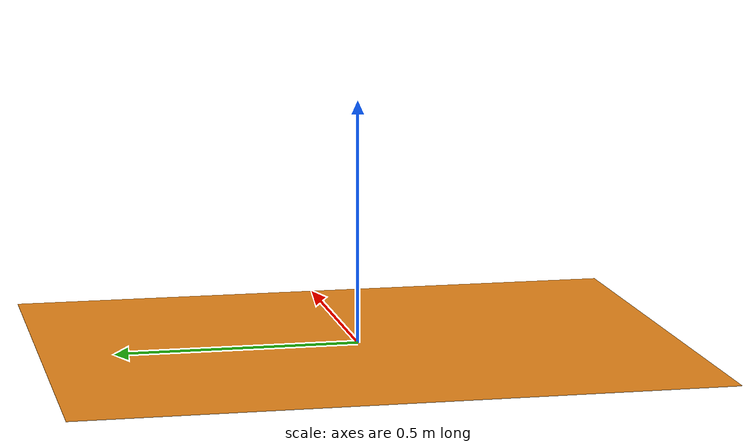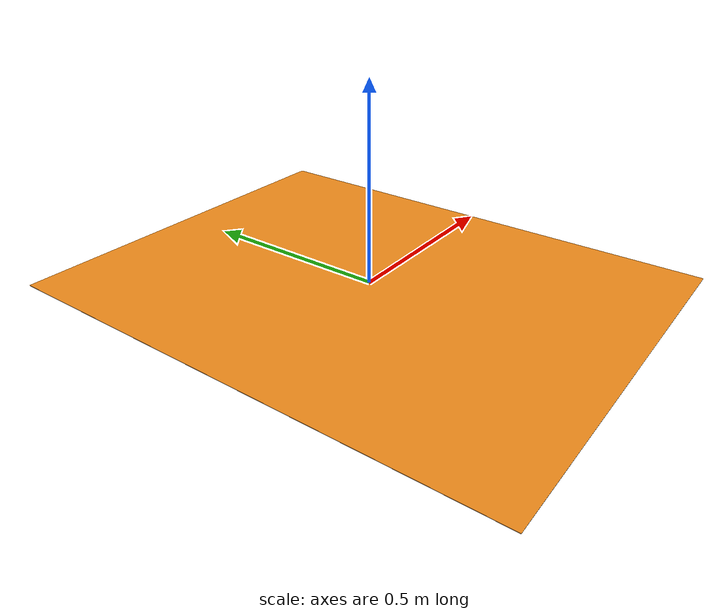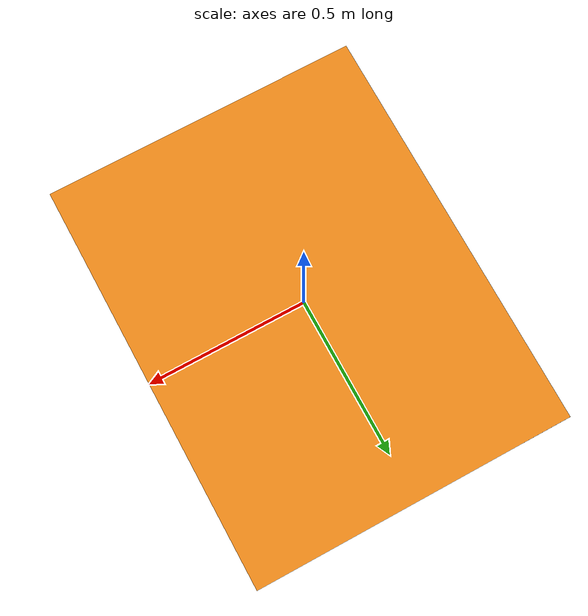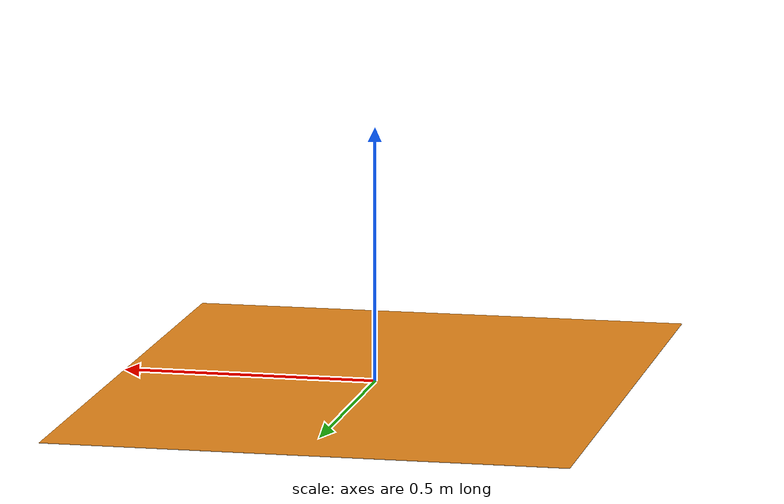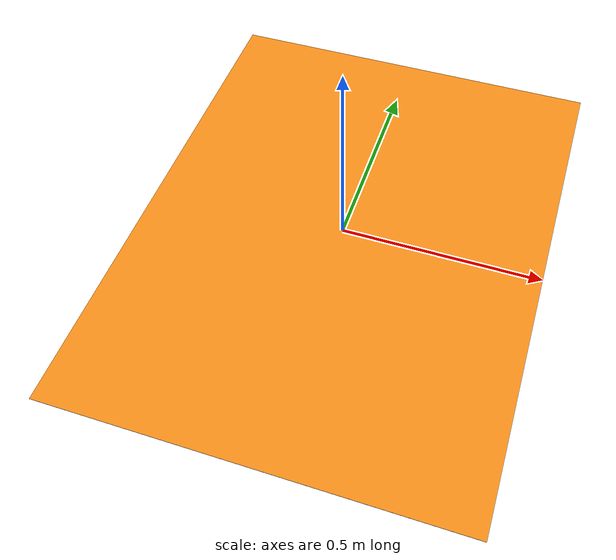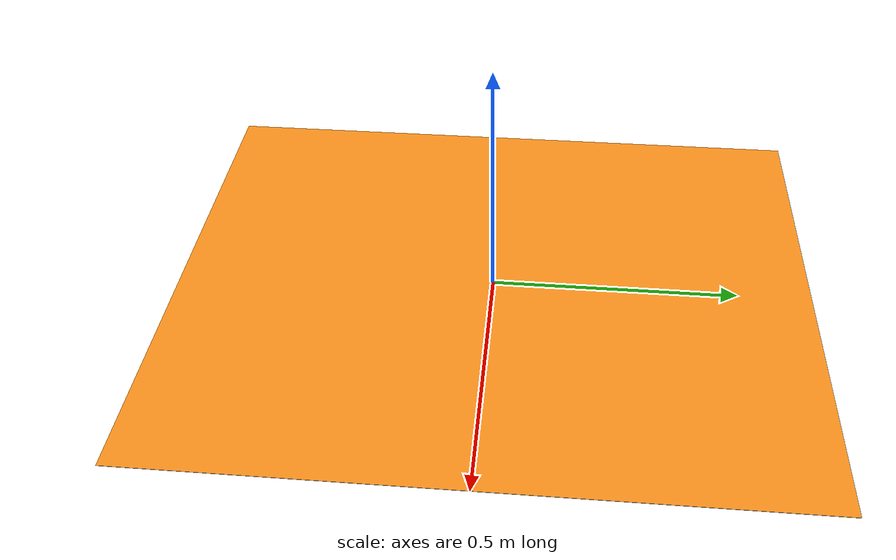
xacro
<?xml version="1.0"?>
<!-- Revolute-Revolute Manipulator -->
<robot name="table2" xmlns:xacro="http://www.ros.org/wiki/xacro">

  <!-- Constants for robot dimensions -->
  <xacro:property name="M_PI" value="3.1415926535897931"/>
  <xacro:property name="mass" value="0.9" /> <!-- arbitrary value for mass -->
  <xacro:property name="length" value="1" />
  <xacro:property name="width" value="1" />
  <xacro:property name="height" value="0.001" />

  <xacro:include filename="$(find object_description)/urdf/materials.xacro" />

  <link name="world"/>

  <joint name="world_table2" type="fixed">
    <parent link="world"/>
    <child link="table2"/>
  </joint>

  <!-- table2 -->
  <link name="table2">

    <visual>
      <origin xyz="0 0 ${height/2}" rpy="0 0 0"/>
      <geometry>
	<box size="${length} ${width+0.3} ${height}"/>
      </geometry>
      <material name="orange"/>
    </visual>

    <collision>
      <origin xyz="0 0 ${height/2}" rpy="0 0 0"/>
      <geometry>
	<box size="${length} ${width} ${height}"/>
      </geometry>
    </collision>

    <inertial>
      <origin xyz="0 0 ${height/2}" rpy="0 0 0"/>
      <mass value="${mass}"/>
      <inertia
	  ixx="${mass / 12.0 * (width*width + height*height)}" ixy="0.0" ixz="0.0"
	  iyy="${mass / 12.0 * (height*height + length*length)}" iyz="0.0"
	  izz="${mass / 12.0 * (length*length + width*width)}"/>
    </inertial>
  </link>

  <gazebo reference="table2">
    <material>Gazebo/Grey</material>
	<mu1>10000</mu1>
    <mu2>5000</mu2>
    <kp>10000.0</kp>
    <kd>1.0</kd>
  </gazebo>

</robot>
